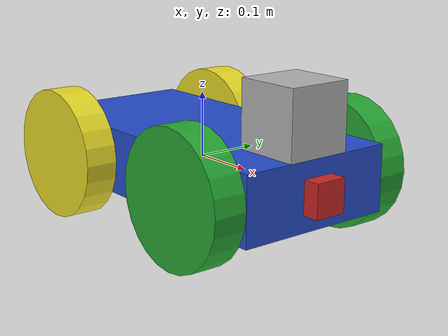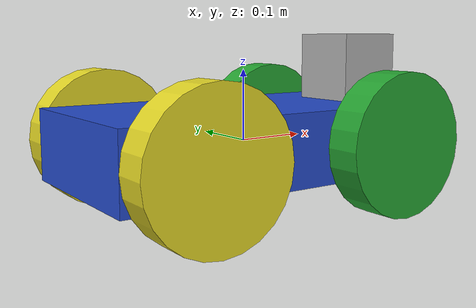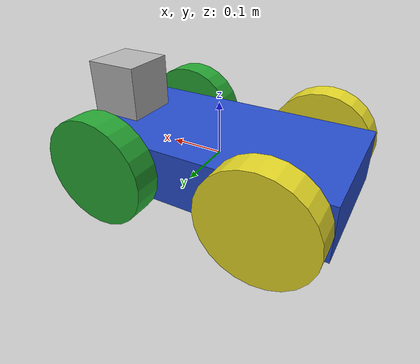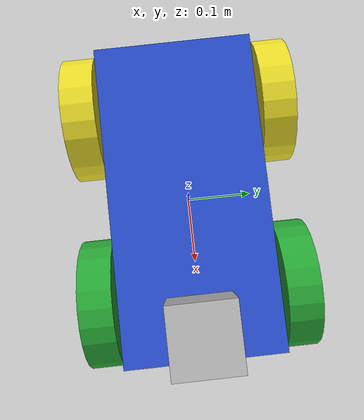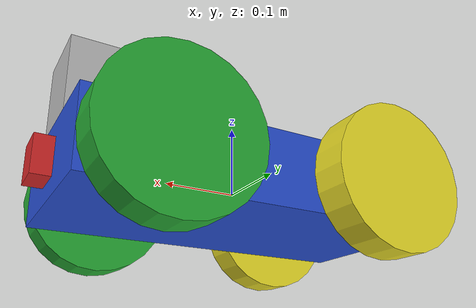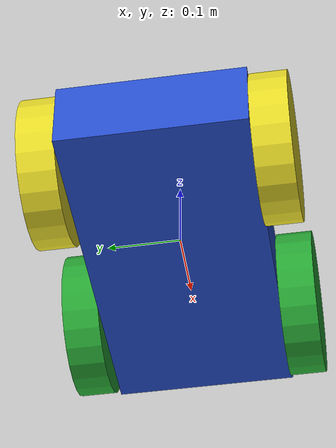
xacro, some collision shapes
<?xml version='1.0'?>

<robot name="my_robot" xmlns:xacro="http://www.ros.org/wiki/xacro">

  <xacro:include filename="$(find my_robot_slam)/urdf/my_robot.gazebo" />

  <link name="robot_footprint"></link>

  <joint name="robot_footprint_joint" type="fixed">
    <origin xyz="0 0 0" rpy="0 0 0" />
    <parent link="robot_footprint"/>
    <child link="chassis" />
  </joint>

  <link name='chassis'>
    <pose>0 0 0.1 0 0 0</pose>

    <inertial>
      <mass value="20.0"/>
      <origin xyz="0.0 0 0" rpy=" 0 0 0"/>
      <inertia
          ixx="0.1" ixy="0" ixz="0"
          iyy="0.1" iyz="0"
          izz="0.1"
      />
    </inertial>

    <collision name='collision'>
      <origin xyz="0 0 0" rpy=" 0 0 0"/>
      <geometry>
        <box size=".5 .25 .1"/>
      </geometry>
    </collision>

    <visual name='chassis_visual'>
      <origin xyz="0 0 0" rpy=" 0 0 0"/>
      <geometry>
        <box size=".5 .25 .1"/>
      </geometry>
    </visual>

  </link>

  <link name='left_front_wheel'>
    <inertial>
      <mass value="5.0"/>
      <origin xyz="0 0 0" rpy=" 0 1.5707 1.5707"/>
      <inertia
          ixx="0.1" ixy="0" ixz="0"
          iyy="0.1" iyz="0"
          izz="0.1"
      />
    </inertial>

    <collision name='left_front_wheel_collision'>
      <origin xyz="0 0 0" rpy=" 0 1.5707 1.5707"/>
      <geometry>
        <cylinder radius="0.1" length = "0.05"/>
      </geometry>
    </collision>

    <visual name='left_front_wheel_visual'>
      <origin xyz="0 0 0" rpy=" 0 1.5707 1.5707"/>
      <geometry>
        <cylinder radius="0.1" length = "0.05"/>
      </geometry>
    </visual>

  </link>

  <link name='left_back_wheel'>
    <inertial>
      <mass value="5.0"/>
      <origin xyz="0 0 0" rpy=" 0 1.5707 1.5707"/>
      <inertia
          ixx="0.1" ixy="0" ixz="0"
          iyy="0.1" iyz="0"
          izz="0.1"
      />
    </inertial>

    <collision name='left_back_wheel_collision'>
      <origin xyz="0 0 0" rpy=" 0 1.5707 1.5707"/>
      <geometry>
        <cylinder radius="0.1" length = "0.05"/>
      </geometry>
    </collision>

    <visual name='left_back_wheel_visual'>
      <origin xyz="0 0 0" rpy=" 0 1.5707 1.5707"/>
      <geometry>
        <cylinder radius="0.1" length = "0.05"/>
      </geometry>
    </visual>

  </link>

  <link name='right_front_wheel'>
    <inertial>
      <mass value="5.0"/>
      <origin xyz="0.0 0 0" rpy=" 0 1.5707 1.5707"/>
      <inertia
          ixx="0.1" ixy="0" ixz="0"
          iyy="0.1" iyz="0"
          izz="0.1"
      />
    </inertial>

    <collision name='right_front_wheel_collision'>
      <origin xyz="0 0 0" rpy=" 0 1.5707 1.5707"/>
      <geometry>
        <cylinder radius="0.1" length = "0.05"/>
      </geometry>
    </collision>

    <visual name='right_front_wheel_visual'>
      <origin xyz="0 0 0" rpy=" 0 1.5707 1.5707"/>
      <geometry>
        <cylinder radius="0.1" length = "0.05"/>
      </geometry>
    </visual>

  </link>

  <link name='right_back_wheel'>
    <inertial>
      <mass value="5.0"/>
      <origin xyz="0.0 0 0" rpy=" 0 1.5707 1.5707"/>
      <inertia
          ixx="0.1" ixy="0" ixz="0"
          iyy="0.1" iyz="0"
          izz="0.1"
      />
    </inertial>

    <collision name='right_back_wheel_collision'>
      <origin xyz="0 0 0" rpy=" 0 1.5707 1.5707"/>
      <geometry>
        <cylinder radius="0.1" length = "0.05"/>
      </geometry>
    </collision>

    <visual name='right_back_wheel_visual'>
      <origin xyz="0 0 0" rpy=" 0 1.5707 1.5707"/>
      <geometry>
        <cylinder radius="0.1" length = "0.05"/>
      </geometry>
    </visual>

  </link>

  <joint type="continuous" name="left_front_wheel_hinge">
    <origin xyz="0.15 0.15 0" rpy="0 0 0"/>
    <child link="left_front_wheel"/>
    <parent link="chassis"/>
    <axis xyz="0 1 0" rpy="0 0 0"/>
    <limit effort="10000" velocity="1000"/>
    <dynamics damping="1.0" friction="1.0"/>
  </joint>

  <joint type="continuous" name="left_back_wheel_hinge">
    <origin xyz="-0.15 0.15 0" rpy="0 0 0"/>
    <child link="left_back_wheel"/>
    <parent link="chassis"/>
    <axis xyz="0 1 0" rpy="0 0 0"/>
    <limit effort="10000" velocity="1000"/>
    <dynamics damping="1.0" friction="1.0"/>
  </joint>

  <joint type="continuous" name="right_front_wheel_hinge">
    <origin xyz="0.15 -0.15 0" rpy="0 0 0"/>
    <child link="right_front_wheel"/>
    <parent link="chassis"/>
    <axis xyz="0 1 0" rpy="0 0 0"/>
    <limit effort="10000" velocity="1000"/>
    <dynamics damping="1.0" friction="1.0"/>
  </joint>

  <joint type="continuous" name="right_back_wheel_hinge">
    <origin xyz="-0.15 -0.15 0" rpy="0 0 0"/>
    <child link="right_back_wheel"/>
    <parent link="chassis"/>
    <axis xyz="0 1 0" rpy="0 0 0"/>
    <limit effort="10000" velocity="1000"/>
    <dynamics damping="1.0" friction="1.0"/>
  </joint>

  <link name='camera'>
    <inertial>
      <mass value="0.1"/>
      <origin xyz="0 0 0" rpy=" 0 0 0"/>
      <inertia
          ixx="1e-6" ixy="0" ixz="0"
          iyy="1e-6" iyz="0"
          izz="1e-6"
      />
    </inertial>

    <collision name='camera_collision'>
      <origin xyz="0 0 0" rpy=" 0 0 0"/>
      <geometry>
        <box size="0.05 0.05 0.05"/>
      </geometry>
    </collision>

    <visual name='camera_visual'>
      <origin xyz="0 0 0" rpy=" 0 0 0"/>
      <geometry>
        <box size="0.05 0.05 0.05"/>
      </geometry>
    </visual>

  </link>

  <joint type="fixed" name="camera_joint">
    <origin xyz="0.25 0 0" rpy="0 0 0"/>
    <child link="camera"/>
    <parent link="chassis"/>
    <axis xyz="0 1 0" rpy="0 0 0"/>
  </joint>

  <link name="hokuyo">
    <inertial>
      <mass value="1e-5"/>
      <origin xyz="0 0 0" rpy=" 0 0 0"/>
      <inertia
          ixx="1e-6" ixy="0" ixz="0"
          iyy="1e-6" iyz="0"
          izz="1e-6"
      />
    </inertial>

    <collision name="hokuyo_collision">
      <origin xyz="0 0 0" rpy=" 0 0 0"/>
      <geometry>
        <box size="0.1 0.1 0.1"/>
      </geometry>
    </collision>

    <visual name="hokuyo_visual">
      <origin xyz="0 0 0" rpy=" 0 0 0"/>
      <geometry>
        <mesh filename = "package://my_robot_slam/meshes/hokuyo.dae"/>
      </geometry>
    </visual>

  </link>

  <joint type="fixed" name="hokuyo_joint">
    <origin xyz="0.2 0 0.1" rpy="0 0 0"/>
    <child link="hokuyo"/>
    <parent link="chassis"/>
    <axis xyz="0 1 0" rpy="0 0 0"/>
  </joint>

  <link name="camera_link_optical">
  </link>

  <joint name="camera_optical_joint" type="fixed">
    <origin xyz="0 0 0" rpy="-1.5707 0 -1.5707"/>
    <parent link="camera"/>
    <child link="camera_link_optical"/>
  </joint>

  <gazebo reference="chassis">
    <material>Gazebo/Blue</material>
  </gazebo>

  <gazebo reference="left_front_wheel">
    <material>Gazebo/Green</material>
  </gazebo>

  <gazebo reference="right_front_wheel">
    <material>Gazebo/Green</material>
  </gazebo>

  <gazebo reference="left_back_wheel">
    <material>Gazebo/Yellow</material>
  </gazebo>

  <gazebo reference="right_back_wheel">
    <material>Gazebo/Yellow</material>
  </gazebo>

  <gazebo reference="camera">
    <material>Gazebo/Red</material>
  </gazebo>

</robot>
